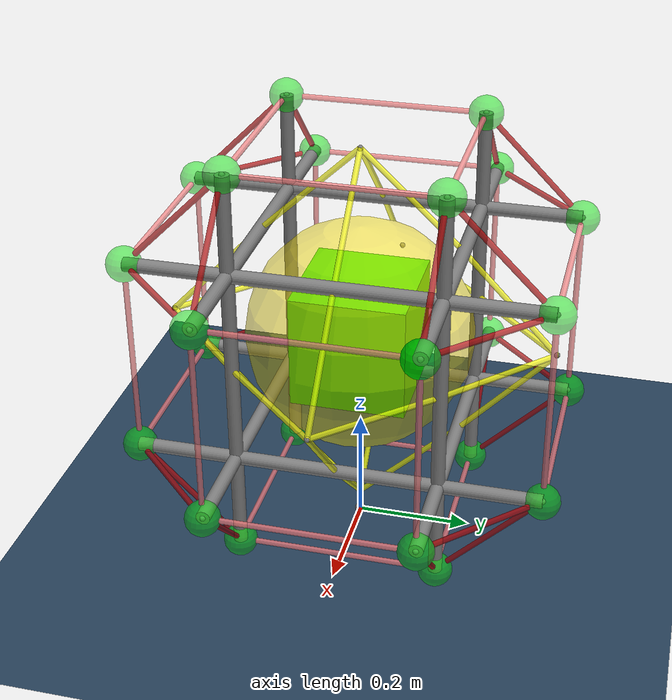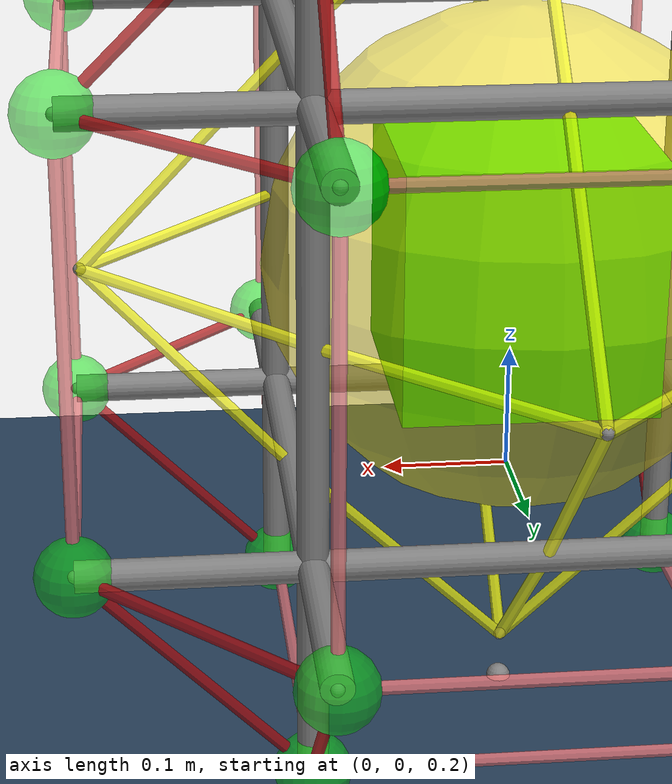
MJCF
<?xml version='1.0' encoding='utf-8'?>
<mujoco model="TT12_environment">
  <compiler autolimits="true" coordinate="local" angle="degree" inertiafromgeom="true" />
  <option timestep="1e-05" gravity="0 0 -10" integrator="Euler">
    <flag override="disable" energy="enable" />
  </option>
  <visual>
    <headlight ambient="0.59999999999999998 0.59999999999999998 0.59999999999999998" diffuse="0.29999999999999999 0.29999999999999999 0.29999999999999999" specular="0.10000000000000001 0.10000000000000001 0.10000000000000001" />
  </visual>
  <default>
    <default class="/">
      <joint type="hinge" damping="0" />
      <geom type="capsule" />
      <site type="sphere" size="0.01" />
      <tendon limited="true" range="0 10" width="0.0050000000000000001" rgba="1 0 0 1" damping="10" />
    </default>
    <default class="tt_model_0/">
      <tendon limited="true" range="0 10" width="0.0050000000000000001" rgba="1 0 0 1" damping="10" />
    </default>
    <default class="tt_model_0/rod0_1/" />
    <default class="tt_model_0/rod2_3/" />
    <default class="tt_model_0/rod4_5/" />
    <default class="tt_model_0/rod6_7/" />
    <default class="tt_model_0/rod8_9/" />
    <default class="tt_model_0/rod10_11/" />
    <default class="tt_model_0/rod12_13/" />
    <default class="tt_model_0/rod14_15/" />
    <default class="tt_model_0/rod16_17/" />
    <default class="tt_model_0/rod18_19/" />
    <default class="tt_model_0/rod20_21/" />
    <default class="tt_model_0/rod22_23/" />
    <default class="tt_model_0/middle_platform/" />
  </default>
  <asset>
    <texture name="skybox" type="skybox" builtin="gradient" rgb1="0.29999999999999999 0.5 0.69999999999999996" rgb2="0 0 0" width="512" height="3072" />
    <texture name="2d" type="2d" builtin="checker" rgb1="0.20000000000000001 0.29999999999999999 0.40000000000000002" rgb2="0.10000000000000001 0.20000000000000001 0.29999999999999999" width="300" height="300" />
    <material name="grid" class="/" texture="2d" texrepeat="5 5" reflectance="0.20000000000000001" />
  </asset>
  <worldbody>
    <geom name="floor" class="/" type="plane" condim="6" priority="1" size="0 0 0.125" material="grid" friction="0.5 0.0050000000000000001 0.0001" solref="-5773.1000000000004 -68.760000000000005" solimp="0.26900000000000002 0.070999999999999994 0.065000000000000002 0.5 2" pos="0 0 0" />
    <light name="light_-2" class="/" pos="-2 -1 3" dir="2 1 -2" />
    <light name="light_2" class="/" pos="2 -1 3" dir="-2 1 -2" />
    <site name="world_site" class="/" pos="0 0 0" />
    <site name="tt_model_0/middle_site_0_1" class="tt_model_0/" rgba="0 0 0 0" pos="0.17499999999999999 0.17499999999999999 0.38" />
    <body pos="0.17499999999999999 0.17499999999999999 0.38" name="tt_model_0/rod0_1/">
      <freejoint name="tt_model_0/rod0_1/" />
      <geom name="tt_model_0/rod0_1/geom0_1" class="tt_model_0/rod0_1/" type="cylinder" size="0.012" mass="0.022499999999999999" fromto="0 0 0.34999999999999998 0 0 -0.34999999999999998" />
      <site name="tt_model_0/rod0_1/node_0" class="tt_model_0/rod0_1/" pos="0 0 0.34999999999999998" />
      <site name="tt_model_0/rod0_1/node_1" class="tt_model_0/rod0_1/" pos="0 0 -0.34999999999999998" />
      <site name="tt_model_0/rod0_1/node_24" class="tt_model_0/rod0_1/" pos="0 0 0" />
      <geom name="tt_model_0/rod0_1/geom_edge_0" class="tt_model_0/rod0_1/" type="sphere" condim="6" size="0.029999999999999999" rgba="0 0.90000000000000002 0 0.5" mass="0.011299999999999999" pos="0 0 0.34999999999999998" />
      <geom name="tt_model_0/rod0_1/geom_edge_1" class="tt_model_0/rod0_1/" type="sphere" condim="6" size="0.029999999999999999" rgba="0 0.90000000000000002 0 0.5" mass="0.011299999999999999" pos="0 0 -0.34999999999999998" />
    </body>
    <site name="tt_model_0/middle_site_2_3" class="tt_model_0/" rgba="0 0 0 0" pos="-0.17499999999999999 0.17499999999999999 0.38" />
    <body pos="-0.17499999999999999 0.17499999999999999 0.38" name="tt_model_0/rod2_3/">
      <freejoint name="tt_model_0/rod2_3/" />
      <geom name="tt_model_0/rod2_3/geom2_3" class="tt_model_0/rod2_3/" type="cylinder" size="0.012" mass="0.022499999999999999" fromto="0 0 0.34999999999999998 0 0 -0.34999999999999998" />
      <site name="tt_model_0/rod2_3/node_2" class="tt_model_0/rod2_3/" pos="0 0 0.34999999999999998" />
      <site name="tt_model_0/rod2_3/node_3" class="tt_model_0/rod2_3/" pos="0 0 -0.34999999999999998" />
      <site name="tt_model_0/rod2_3/node_25" class="tt_model_0/rod2_3/" pos="0 0 0" />
      <geom name="tt_model_0/rod2_3/geom_edge_2" class="tt_model_0/rod2_3/" type="sphere" condim="6" size="0.029999999999999999" rgba="0 0.90000000000000002 0 0.5" mass="0.011299999999999999" pos="0 0 0.34999999999999998" />
      <geom name="tt_model_0/rod2_3/geom_edge_3" class="tt_model_0/rod2_3/" type="sphere" condim="6" size="0.029999999999999999" rgba="0 0.90000000000000002 0 0.5" mass="0.011299999999999999" pos="0 0 -0.34999999999999998" />
    </body>
    <site name="tt_model_0/middle_site_4_5" class="tt_model_0/" rgba="0 0 0 0" pos="-0.17499999999999999 -0.17499999999999999 0.38" />
    <body pos="-0.17499999999999999 -0.17499999999999999 0.38" name="tt_model_0/rod4_5/">
      <freejoint name="tt_model_0/rod4_5/" />
      <geom name="tt_model_0/rod4_5/geom4_5" class="tt_model_0/rod4_5/" type="cylinder" size="0.012" mass="0.022499999999999999" fromto="0 0 0.34999999999999998 0 0 -0.34999999999999998" />
      <site name="tt_model_0/rod4_5/node_4" class="tt_model_0/rod4_5/" pos="0 0 0.34999999999999998" />
      <site name="tt_model_0/rod4_5/node_5" class="tt_model_0/rod4_5/" pos="0 0 -0.34999999999999998" />
      <site name="tt_model_0/rod4_5/node_26" class="tt_model_0/rod4_5/" pos="0 0 0" />
      <geom name="tt_model_0/rod4_5/geom_edge_4" class="tt_model_0/rod4_5/" type="sphere" condim="6" size="0.029999999999999999" rgba="0 0.90000000000000002 0 0.5" mass="0.011299999999999999" pos="0 0 0.34999999999999998" />
      <geom name="tt_model_0/rod4_5/geom_edge_5" class="tt_model_0/rod4_5/" type="sphere" condim="6" size="0.029999999999999999" rgba="0 0.90000000000000002 0 0.5" mass="0.011299999999999999" pos="0 0 -0.34999999999999998" />
    </body>
    <site name="tt_model_0/middle_site_6_7" class="tt_model_0/" rgba="0 0 0 0" pos="0.17499999999999999 -0.17499999999999999 0.38" />
    <body pos="0.17499999999999999 -0.17499999999999999 0.38" name="tt_model_0/rod6_7/">
      <freejoint name="tt_model_0/rod6_7/" />
      <geom name="tt_model_0/rod6_7/geom6_7" class="tt_model_0/rod6_7/" type="cylinder" size="0.012" mass="0.022499999999999999" fromto="0 0 0.34999999999999998 0 0 -0.34999999999999998" />
      <site name="tt_model_0/rod6_7/node_6" class="tt_model_0/rod6_7/" pos="0 0 0.34999999999999998" />
      <site name="tt_model_0/rod6_7/node_7" class="tt_model_0/rod6_7/" pos="0 0 -0.34999999999999998" />
      <site name="tt_model_0/rod6_7/node_27" class="tt_model_0/rod6_7/" pos="0 0 0" />
      <geom name="tt_model_0/rod6_7/geom_edge_6" class="tt_model_0/rod6_7/" type="sphere" condim="6" size="0.029999999999999999" rgba="0 0.90000000000000002 0 0.5" mass="0.011299999999999999" pos="0 0 0.34999999999999998" />
      <geom name="tt_model_0/rod6_7/geom_edge_7" class="tt_model_0/rod6_7/" type="sphere" condim="6" size="0.029999999999999999" rgba="0 0.90000000000000002 0 0.5" mass="0.011299999999999999" pos="0 0 -0.34999999999999998" />
    </body>
    <site name="tt_model_0/middle_site_8_9" class="tt_model_0/" rgba="0 0 0 0" pos="0.17499999999999999 0 0.55499999999999994" />
    <body pos="0.17499999999999999 0 0.55499999999999994" name="tt_model_0/rod8_9/">
      <freejoint name="tt_model_0/rod8_9/" />
      <geom name="tt_model_0/rod8_9/geom8_9" class="tt_model_0/rod8_9/" type="cylinder" size="0.012" mass="0.022499999999999999" fromto="0 0.34999999999999998 0 0 -0.34999999999999998 0" />
      <site name="tt_model_0/rod8_9/node_8" class="tt_model_0/rod8_9/" pos="0 0.34999999999999998 0" />
      <site name="tt_model_0/rod8_9/node_9" class="tt_model_0/rod8_9/" pos="0 -0.34999999999999998 0" />
      <site name="tt_model_0/rod8_9/node_28" class="tt_model_0/rod8_9/" pos="0 0 0" />
      <geom name="tt_model_0/rod8_9/geom_edge_8" class="tt_model_0/rod8_9/" type="sphere" condim="6" size="0.029999999999999999" rgba="0 0.90000000000000002 0 0.5" mass="0.011299999999999999" pos="0 0.34999999999999998 0" />
      <geom name="tt_model_0/rod8_9/geom_edge_9" class="tt_model_0/rod8_9/" type="sphere" condim="6" size="0.029999999999999999" rgba="0 0.90000000000000002 0 0.5" mass="0.011299999999999999" pos="0 -0.34999999999999998 0" />
    </body>
    <site name="tt_model_0/middle_site_10_11" class="tt_model_0/" rgba="0 0 0 0" pos="0.17499999999999999 0 0.20500000000000002" />
    <body pos="0.17499999999999999 0 0.20500000000000002" name="tt_model_0/rod10_11/">
      <freejoint name="tt_model_0/rod10_11/" />
      <geom name="tt_model_0/rod10_11/geom10_11" class="tt_model_0/rod10_11/" type="cylinder" size="0.012" mass="0.022499999999999999" fromto="0 0.34999999999999998 0 0 -0.34999999999999998 0" />
      <site name="tt_model_0/rod10_11/node_10" class="tt_model_0/rod10_11/" pos="0 0.34999999999999998 0" />
      <site name="tt_model_0/rod10_11/node_11" class="tt_model_0/rod10_11/" pos="0 -0.34999999999999998 0" />
      <site name="tt_model_0/rod10_11/node_29" class="tt_model_0/rod10_11/" pos="0 0 0" />
      <geom name="tt_model_0/rod10_11/geom_edge_10" class="tt_model_0/rod10_11/" type="sphere" condim="6" size="0.029999999999999999" rgba="0 0.90000000000000002 0 0.5" mass="0.011299999999999999" pos="0 0.34999999999999998 0" />
      <geom name="tt_model_0/rod10_11/geom_edge_11" class="tt_model_0/rod10_11/" type="sphere" condim="6" size="0.029999999999999999" rgba="0 0.90000000000000002 0 0.5" mass="0.011299999999999999" pos="0 -0.34999999999999998 0" />
    </body>
    <site name="tt_model_0/middle_site_12_13" class="tt_model_0/" rgba="0 0 0 0" pos="-0.17499999999999999 0 0.20500000000000002" />
    <body pos="-0.17499999999999999 0 0.20500000000000002" name="tt_model_0/rod12_13/">
      <freejoint name="tt_model_0/rod12_13/" />
      <geom name="tt_model_0/rod12_13/geom12_13" class="tt_model_0/rod12_13/" type="cylinder" size="0.012" mass="0.022499999999999999" fromto="0 0.34999999999999998 0 0 -0.34999999999999998 0" />
      <site name="tt_model_0/rod12_13/node_12" class="tt_model_0/rod12_13/" pos="0 0.34999999999999998 0" />
      <site name="tt_model_0/rod12_13/node_13" class="tt_model_0/rod12_13/" pos="0 -0.34999999999999998 0" />
      <site name="tt_model_0/rod12_13/node_30" class="tt_model_0/rod12_13/" pos="0 0 0" />
      <geom name="tt_model_0/rod12_13/geom_edge_12" class="tt_model_0/rod12_13/" type="sphere" condim="6" size="0.029999999999999999" rgba="0 0.90000000000000002 0 0.5" mass="0.011299999999999999" pos="0 0.34999999999999998 0" />
      <geom name="tt_model_0/rod12_13/geom_edge_13" class="tt_model_0/rod12_13/" type="sphere" condim="6" size="0.029999999999999999" rgba="0 0.90000000000000002 0 0.5" mass="0.011299999999999999" pos="0 -0.34999999999999998 0" />
    </body>
    <site name="tt_model_0/middle_site_14_15" class="tt_model_0/" rgba="0 0 0 0" pos="-0.17499999999999999 0 0.55499999999999994" />
    <body pos="-0.17499999999999999 0 0.55499999999999994" name="tt_model_0/rod14_15/">
      <freejoint name="tt_model_0/rod14_15/" />
      <geom name="tt_model_0/rod14_15/geom14_15" class="tt_model_0/rod14_15/" type="cylinder" size="0.012" mass="0.022499999999999999" fromto="0 0.34999999999999998 0 0 -0.34999999999999998 0" />
      <site name="tt_model_0/rod14_15/node_14" class="tt_model_0/rod14_15/" pos="0 0.34999999999999998 0" />
      <site name="tt_model_0/rod14_15/node_15" class="tt_model_0/rod14_15/" pos="0 -0.34999999999999998 0" />
      <site name="tt_model_0/rod14_15/node_31" class="tt_model_0/rod14_15/" pos="0 0 0" />
      <geom name="tt_model_0/rod14_15/geom_edge_14" class="tt_model_0/rod14_15/" type="sphere" condim="6" size="0.029999999999999999" rgba="0 0.90000000000000002 0 0.5" mass="0.011299999999999999" pos="0 0.34999999999999998 0" />
      <geom name="tt_model_0/rod14_15/geom_edge_15" class="tt_model_0/rod14_15/" type="sphere" condim="6" size="0.029999999999999999" rgba="0 0.90000000000000002 0 0.5" mass="0.011299999999999999" pos="0 -0.34999999999999998 0" />
    </body>
    <site name="tt_model_0/middle_site_16_17" class="tt_model_0/" rgba="0 0 0 0" pos="0 0.17499999999999999 0.55499999999999994" />
    <body pos="0 0.17499999999999999 0.55499999999999994" name="tt_model_0/rod16_17/">
      <freejoint name="tt_model_0/rod16_17/" />
      <geom name="tt_model_0/rod16_17/geom16_17" class="tt_model_0/rod16_17/" type="cylinder" size="0.012" mass="0.022499999999999999" fromto="0.34999999999999998 0 0 -0.34999999999999998 0 0" />
      <site name="tt_model_0/rod16_17/node_16" class="tt_model_0/rod16_17/" pos="0.34999999999999998 0 0" />
      <site name="tt_model_0/rod16_17/node_17" class="tt_model_0/rod16_17/" pos="-0.34999999999999998 0 0" />
      <site name="tt_model_0/rod16_17/node_32" class="tt_model_0/rod16_17/" pos="0 0 0" />
      <geom name="tt_model_0/rod16_17/geom_edge_16" class="tt_model_0/rod16_17/" type="sphere" condim="6" size="0.029999999999999999" rgba="0 0.90000000000000002 0 0.5" mass="0.011299999999999999" pos="0.34999999999999998 0 0" />
      <geom name="tt_model_0/rod16_17/geom_edge_17" class="tt_model_0/rod16_17/" type="sphere" condim="6" size="0.029999999999999999" rgba="0 0.90000000000000002 0 0.5" mass="0.011299999999999999" pos="-0.34999999999999998 0 0" />
    </body>
    <site name="tt_model_0/middle_site_18_19" class="tt_model_0/" rgba="0 0 0 0" pos="0 -0.17499999999999999 0.55499999999999994" />
    <body pos="0 -0.17499999999999999 0.55499999999999994" name="tt_model_0/rod18_19/">
      <freejoint name="tt_model_0/rod18_19/" />
      <geom name="tt_model_0/rod18_19/geom18_19" class="tt_model_0/rod18_19/" type="cylinder" size="0.012" mass="0.022499999999999999" fromto="0.34999999999999998 0 0 -0.34999999999999998 0 0" />
      <site name="tt_model_0/rod18_19/node_18" class="tt_model_0/rod18_19/" pos="0.34999999999999998 0 0" />
      <site name="tt_model_0/rod18_19/node_19" class="tt_model_0/rod18_19/" pos="-0.34999999999999998 0 0" />
      <site name="tt_model_0/rod18_19/node_33" class="tt_model_0/rod18_19/" pos="0 0 0" />
      <geom name="tt_model_0/rod18_19/geom_edge_18" class="tt_model_0/rod18_19/" type="sphere" condim="6" size="0.029999999999999999" rgba="0 0.90000000000000002 0 0.5" mass="0.011299999999999999" pos="0.34999999999999998 0 0" />
      <geom name="tt_model_0/rod18_19/geom_edge_19" class="tt_model_0/rod18_19/" type="sphere" condim="6" size="0.029999999999999999" rgba="0 0.90000000000000002 0 0.5" mass="0.011299999999999999" pos="-0.34999999999999998 0 0" />
    </body>
    <site name="tt_model_0/middle_site_20_21" class="tt_model_0/" rgba="0 0 0 0" pos="0 -0.17499999999999999 0.20500000000000002" />
    <body pos="0 -0.17499999999999999 0.20500000000000002" name="tt_model_0/rod20_21/">
      <freejoint name="tt_model_0/rod20_21/" />
      <geom name="tt_model_0/rod20_21/geom20_21" class="tt_model_0/rod20_21/" type="cylinder" size="0.012" mass="0.022499999999999999" fromto="0.34999999999999998 0 0 -0.34999999999999998 0 0" />
      <site name="tt_model_0/rod20_21/node_20" class="tt_model_0/rod20_21/" pos="0.34999999999999998 0 0" />
      <site name="tt_model_0/rod20_21/node_21" class="tt_model_0/rod20_21/" pos="-0.34999999999999998 0 0" />
      <site name="tt_model_0/rod20_21/node_34" class="tt_model_0/rod20_21/" pos="0 0 0" />
      <geom name="tt_model_0/rod20_21/geom_edge_20" class="tt_model_0/rod20_21/" type="sphere" condim="6" size="0.029999999999999999" rgba="0 0.90000000000000002 0 0.5" mass="0.011299999999999999" pos="0.34999999999999998 0 0" />
      <geom name="tt_model_0/rod20_21/geom_edge_21" class="tt_model_0/rod20_21/" type="sphere" condim="6" size="0.029999999999999999" rgba="0 0.90000000000000002 0 0.5" mass="0.011299999999999999" pos="-0.34999999999999998 0 0" />
    </body>
    <site name="tt_model_0/middle_site_22_23" class="tt_model_0/" rgba="0 0 0 0" pos="0 0.17499999999999999 0.20500000000000002" />
    <body pos="0 0.17499999999999999 0.20500000000000002" name="tt_model_0/rod22_23/">
      <freejoint name="tt_model_0/rod22_23/" />
      <geom name="tt_model_0/rod22_23/geom22_23" class="tt_model_0/rod22_23/" type="cylinder" size="0.012" mass="0.022499999999999999" fromto="0.34999999999999998 0 0 -0.34999999999999998 0 0" />
      <site name="tt_model_0/rod22_23/node_22" class="tt_model_0/rod22_23/" pos="0.34999999999999998 0 0" />
      <site name="tt_model_0/rod22_23/node_23" class="tt_model_0/rod22_23/" pos="-0.34999999999999998 0 0" />
      <site name="tt_model_0/rod22_23/node_35" class="tt_model_0/rod22_23/" pos="0 0 0" />
      <geom name="tt_model_0/rod22_23/geom_edge_22" class="tt_model_0/rod22_23/" type="sphere" condim="6" size="0.029999999999999999" rgba="0 0.90000000000000002 0 0.5" mass="0.011299999999999999" pos="0.34999999999999998 0 0" />
      <geom name="tt_model_0/rod22_23/geom_edge_23" class="tt_model_0/rod22_23/" type="sphere" condim="6" size="0.029999999999999999" rgba="0 0.90000000000000002 0 0.5" mass="0.011299999999999999" pos="-0.34999999999999998 0 0" />
    </body>
    <site name="tt_model_0/middle_element_site" class="tt_model_0/" rgba="0 0 0 0" pos="0 0 0.38" />
    <body pos="0 0 0.38" name="tt_model_0/middle_platform/">
      <freejoint name="tt_model_0/middle_platform/" />
      <inertial pos="0 0 0" mass="0.69999999999999996" diaginertia="0.02 0.02 0.02" />
      <site name="tt_model_0/middle_platform/node_41" class="tt_model_0/middle_platform/" pos="0 0 0.33999999999999997" />
      <site name="tt_model_0/middle_platform/node_38" class="tt_model_0/middle_platform/" pos="-0.34000000000000002 0 0" />
      <site name="tt_model_0/middle_platform/node_40" class="tt_model_0/middle_platform/" pos="0 -0.34000000000000002 0" />
      <site name="tt_model_0/middle_platform/node_39" class="tt_model_0/middle_platform/" pos="0 0.34000000000000002 0" />
      <site name="tt_model_0/middle_platform/node_37" class="tt_model_0/middle_platform/" pos="0.34000000000000002 0 0" />
      <site name="tt_model_0/middle_platform/node_42" class="tt_model_0/middle_platform/" pos="0 0 -0.34000000000000002" />
      <site name="tt_model_0/middle_platform/outside_site" class="tt_model_0/middle_platform/" rgba="1 0.90000000000000002 0 0.5" size="0.20000000000000001" pos="0 0 0" />
      <body name="tt_model_0/middle_platform/inside_ball" pos="0 0 0">
        <inertial pos="0 0 0" mass="6.5999999999999996" diaginertia="0.12 0.12 0.12" />
        <joint name="tt_model_0/middle_platform/x_control" class="tt_model_0/middle_platform/" type="hinge" axis="1 0 0" />
        <joint name="tt_model_0/middle_platform/y_control" class="tt_model_0/middle_platform/" type="hinge" axis="0 1 0" />
        <joint name="tt_model_0/middle_platform/z_control" class="tt_model_0/middle_platform/" type="hinge" axis="0 0 1" />
        <site name="tt_model_0/middle_platform/inside_site" class="tt_model_0/middle_platform/" type="box" rgba="0 0.90000000000000002 0 1" size="0.10000000000000001 0.10000000000000001 0.10000000000000001" pos="0 0 0" />
      </body>
    </body>
  </worldbody>
  <contact>
    <exclude name="tt_model_0/exclude_rod0_1_rod2_3" body1="tt_model_0/rod0_1/" body2="tt_model_0/rod2_3/" />
    <exclude name="tt_model_0/exclude_rod0_1_rod4_5" body1="tt_model_0/rod0_1/" body2="tt_model_0/rod4_5/" />
    <exclude name="tt_model_0/exclude_rod0_1_rod6_7" body1="tt_model_0/rod0_1/" body2="tt_model_0/rod6_7/" />
    <exclude name="tt_model_0/exclude_rod0_1_rod8_9" body1="tt_model_0/rod0_1/" body2="tt_model_0/rod8_9/" />
    <exclude name="tt_model_0/exclude_rod0_1_rod10_11" body1="tt_model_0/rod0_1/" body2="tt_model_0/rod10_11/" />
    <exclude name="tt_model_0/exclude_rod0_1_rod12_13" body1="tt_model_0/rod0_1/" body2="tt_model_0/rod12_13/" />
    <exclude name="tt_model_0/exclude_rod0_1_rod14_15" body1="tt_model_0/rod0_1/" body2="tt_model_0/rod14_15/" />
    <exclude name="tt_model_0/exclude_rod0_1_rod16_17" body1="tt_model_0/rod0_1/" body2="tt_model_0/rod16_17/" />
    <exclude name="tt_model_0/exclude_rod0_1_rod18_19" body1="tt_model_0/rod0_1/" body2="tt_model_0/rod18_19/" />
    <exclude name="tt_model_0/exclude_rod0_1_rod20_21" body1="tt_model_0/rod0_1/" body2="tt_model_0/rod20_21/" />
    <exclude name="tt_model_0/exclude_rod0_1_rod22_23" body1="tt_model_0/rod0_1/" body2="tt_model_0/rod22_23/" />
    <exclude name="tt_model_0/exclude_rod2_3_rod4_5" body1="tt_model_0/rod2_3/" body2="tt_model_0/rod4_5/" />
    <exclude name="tt_model_0/exclude_rod2_3_rod6_7" body1="tt_model_0/rod2_3/" body2="tt_model_0/rod6_7/" />
    <exclude name="tt_model_0/exclude_rod2_3_rod8_9" body1="tt_model_0/rod2_3/" body2="tt_model_0/rod8_9/" />
    <exclude name="tt_model_0/exclude_rod2_3_rod10_11" body1="tt_model_0/rod2_3/" body2="tt_model_0/rod10_11/" />
    <exclude name="tt_model_0/exclude_rod2_3_rod12_13" body1="tt_model_0/rod2_3/" body2="tt_model_0/rod12_13/" />
    <exclude name="tt_model_0/exclude_rod2_3_rod14_15" body1="tt_model_0/rod2_3/" body2="tt_model_0/rod14_15/" />
    <exclude name="tt_model_0/exclude_rod2_3_rod16_17" body1="tt_model_0/rod2_3/" body2="tt_model_0/rod16_17/" />
    <exclude name="tt_model_0/exclude_rod2_3_rod18_19" body1="tt_model_0/rod2_3/" body2="tt_model_0/rod18_19/" />
    <exclude name="tt_model_0/exclude_rod2_3_rod20_21" body1="tt_model_0/rod2_3/" body2="tt_model_0/rod20_21/" />
    <exclude name="tt_model_0/exclude_rod2_3_rod22_23" body1="tt_model_0/rod2_3/" body2="tt_model_0/rod22_23/" />
    <exclude name="tt_model_0/exclude_rod4_5_rod6_7" body1="tt_model_0/rod4_5/" body2="tt_model_0/rod6_7/" />
    <exclude name="tt_model_0/exclude_rod4_5_rod8_9" body1="tt_model_0/rod4_5/" body2="tt_model_0/rod8_9/" />
    <exclude name="tt_model_0/exclude_rod4_5_rod10_11" body1="tt_model_0/rod4_5/" body2="tt_model_0/rod10_11/" />
    <exclude name="tt_model_0/exclude_rod4_5_rod12_13" body1="tt_model_0/rod4_5/" body2="tt_model_0/rod12_13/" />
    <exclude name="tt_model_0/exclude_rod4_5_rod14_15" body1="tt_model_0/rod4_5/" body2="tt_model_0/rod14_15/" />
    <exclude name="tt_model_0/exclude_rod4_5_rod16_17" body1="tt_model_0/rod4_5/" body2="tt_model_0/rod16_17/" />
    <exclude name="tt_model_0/exclude_rod4_5_rod18_19" body1="tt_model_0/rod4_5/" body2="tt_model_0/rod18_19/" />
    <exclude name="tt_model_0/exclude_rod4_5_rod20_21" body1="tt_model_0/rod4_5/" body2="tt_model_0/rod20_21/" />
    <exclude name="tt_model_0/exclude_rod4_5_rod22_23" body1="tt_model_0/rod4_5/" body2="tt_model_0/rod22_23/" />
    <exclude name="tt_model_0/exclude_rod6_7_rod8_9" body1="tt_model_0/rod6_7/" body2="tt_model_0/rod8_9/" />
    <exclude name="tt_model_0/exclude_rod6_7_rod10_11" body1="tt_model_0/rod6_7/" body2="tt_model_0/rod10_11/" />
    <exclude name="tt_model_0/exclude_rod6_7_rod12_13" body1="tt_model_0/rod6_7/" body2="tt_model_0/rod12_13/" />
    <exclude name="tt_model_0/exclude_rod6_7_rod14_15" body1="tt_model_0/rod6_7/" body2="tt_model_0/rod14_15/" />
    <exclude name="tt_model_0/exclude_rod6_7_rod16_17" body1="tt_model_0/rod6_7/" body2="tt_model_0/rod16_17/" />
    <exclude name="tt_model_0/exclude_rod6_7_rod18_19" body1="tt_model_0/rod6_7/" body2="tt_model_0/rod18_19/" />
    <exclude name="tt_model_0/exclude_rod6_7_rod20_21" body1="tt_model_0/rod6_7/" body2="tt_model_0/rod20_21/" />
    <exclude name="tt_model_0/exclude_rod6_7_rod22_23" body1="tt_model_0/rod6_7/" body2="tt_model_0/rod22_23/" />
    <exclude name="tt_model_0/exclude_rod8_9_rod10_11" body1="tt_model_0/rod8_9/" body2="tt_model_0/rod10_11/" />
    <exclude name="tt_model_0/exclude_rod8_9_rod12_13" body1="tt_model_0/rod8_9/" body2="tt_model_0/rod12_13/" />
    <exclude name="tt_model_0/exclude_rod8_9_rod14_15" body1="tt_model_0/rod8_9/" body2="tt_model_0/rod14_15/" />
    <exclude name="tt_model_0/exclude_rod8_9_rod16_17" body1="tt_model_0/rod8_9/" body2="tt_model_0/rod16_17/" />
    <exclude name="tt_model_0/exclude_rod8_9_rod18_19" body1="tt_model_0/rod8_9/" body2="tt_model_0/rod18_19/" />
    <exclude name="tt_model_0/exclude_rod8_9_rod20_21" body1="tt_model_0/rod8_9/" body2="tt_model_0/rod20_21/" />
    <exclude name="tt_model_0/exclude_rod8_9_rod22_23" body1="tt_model_0/rod8_9/" body2="tt_model_0/rod22_23/" />
    <exclude name="tt_model_0/exclude_rod10_11_rod12_13" body1="tt_model_0/rod10_11/" body2="tt_model_0/rod12_13/" />
    <exclude name="tt_model_0/exclude_rod10_11_rod14_15" body1="tt_model_0/rod10_11/" body2="tt_model_0/rod14_15/" />
    <exclude name="tt_model_0/exclude_rod10_11_rod16_17" body1="tt_model_0/rod10_11/" body2="tt_model_0/rod16_17/" />
    <exclude name="tt_model_0/exclude_rod10_11_rod18_19" body1="tt_model_0/rod10_11/" body2="tt_model_0/rod18_19/" />
    <exclude name="tt_model_0/exclude_rod10_11_rod20_21" body1="tt_model_0/rod10_11/" body2="tt_model_0/rod20_21/" />
    <exclude name="tt_model_0/exclude_rod10_11_rod22_23" body1="tt_model_0/rod10_11/" body2="tt_model_0/rod22_23/" />
    <exclude name="tt_model_0/exclude_rod12_13_rod14_15" body1="tt_model_0/rod12_13/" body2="tt_model_0/rod14_15/" />
    <exclude name="tt_model_0/exclude_rod12_13_rod16_17" body1="tt_model_0/rod12_13/" body2="tt_model_0/rod16_17/" />
    <exclude name="tt_model_0/exclude_rod12_13_rod18_19" body1="tt_model_0/rod12_13/" body2="tt_model_0/rod18_19/" />
    <exclude name="tt_model_0/exclude_rod12_13_rod20_21" body1="tt_model_0/rod12_13/" body2="tt_model_0/rod20_21/" />
    <exclude name="tt_model_0/exclude_rod12_13_rod22_23" body1="tt_model_0/rod12_13/" body2="tt_model_0/rod22_23/" />
    <exclude name="tt_model_0/exclude_rod14_15_rod16_17" body1="tt_model_0/rod14_15/" body2="tt_model_0/rod16_17/" />
    <exclude name="tt_model_0/exclude_rod14_15_rod18_19" body1="tt_model_0/rod14_15/" body2="tt_model_0/rod18_19/" />
    <exclude name="tt_model_0/exclude_rod14_15_rod20_21" body1="tt_model_0/rod14_15/" body2="tt_model_0/rod20_21/" />
    <exclude name="tt_model_0/exclude_rod14_15_rod22_23" body1="tt_model_0/rod14_15/" body2="tt_model_0/rod22_23/" />
    <exclude name="tt_model_0/exclude_rod16_17_rod18_19" body1="tt_model_0/rod16_17/" body2="tt_model_0/rod18_19/" />
    <exclude name="tt_model_0/exclude_rod16_17_rod20_21" body1="tt_model_0/rod16_17/" body2="tt_model_0/rod20_21/" />
    <exclude name="tt_model_0/exclude_rod16_17_rod22_23" body1="tt_model_0/rod16_17/" body2="tt_model_0/rod22_23/" />
    <exclude name="tt_model_0/exclude_rod18_19_rod20_21" body1="tt_model_0/rod18_19/" body2="tt_model_0/rod20_21/" />
    <exclude name="tt_model_0/exclude_rod18_19_rod22_23" body1="tt_model_0/rod18_19/" body2="tt_model_0/rod22_23/" />
    <exclude name="tt_model_0/exclude_rod20_21_rod22_23" body1="tt_model_0/rod20_21/" body2="tt_model_0/rod22_23/" />
  </contact>
  <tendon>
    <spatial name="tt_model_0/td0_2" class="tt_model_0/" rgba="1 0.5 0.5 0.69999999999999996" springlength="0.22029831387808038" stiffness="771">
      <site site="tt_model_0/rod0_1/node_0" />
      <site site="tt_model_0/rod2_3/node_2" />
    </spatial>
    <spatial name="tt_model_0/td2_4" class="tt_model_0/" rgba="1 0.5 0.5 0.69999999999999996" springlength="0.22029831387808038" stiffness="771">
      <site site="tt_model_0/rod2_3/node_2" />
      <site site="tt_model_0/rod4_5/node_4" />
    </spatial>
    <spatial name="tt_model_0/td4_6" class="tt_model_0/" rgba="1 0.5 0.5 0.69999999999999996" springlength="0.22029831387808038" stiffness="771">
      <site site="tt_model_0/rod4_5/node_4" />
      <site site="tt_model_0/rod6_7/node_6" />
    </spatial>
    <spatial name="tt_model_0/td6_0" class="tt_model_0/" rgba="1 0.5 0.5 0.69999999999999996" springlength="0.22029831387808038" stiffness="771">
      <site site="tt_model_0/rod6_7/node_6" />
      <site site="tt_model_0/rod0_1/node_0" />
    </spatial>
    <spatial name="tt_model_0/td1_3" class="tt_model_0/" rgba="1 0.5 0.5 0.69999999999999996" springlength="0.22029831387808038" stiffness="771">
      <site site="tt_model_0/rod0_1/node_1" />
      <site site="tt_model_0/rod2_3/node_3" />
    </spatial>
    <spatial name="tt_model_0/td3_5" class="tt_model_0/" rgba="1 0.5 0.5 0.69999999999999996" springlength="0.22029831387808038" stiffness="771">
      <site site="tt_model_0/rod2_3/node_3" />
      <site site="tt_model_0/rod4_5/node_5" />
    </spatial>
    <spatial name="tt_model_0/td5_7" class="tt_model_0/" rgba="1 0.5 0.5 0.69999999999999996" springlength="0.22029831387808038" stiffness="771">
      <site site="tt_model_0/rod4_5/node_5" />
      <site site="tt_model_0/rod6_7/node_7" />
    </spatial>
    <spatial name="tt_model_0/td7_1" class="tt_model_0/" rgba="1 0.5 0.5 0.69999999999999996" springlength="0.22029831387808038" stiffness="771">
      <site site="tt_model_0/rod6_7/node_7" />
      <site site="tt_model_0/rod0_1/node_1" />
    </spatial>
    <spatial name="tt_model_0/td8_10" class="tt_model_0/" rgba="1 0.5 0.5 0.69999999999999996" springlength="0.22029831387808038" stiffness="771">
      <site site="tt_model_0/rod8_9/node_8" />
      <site site="tt_model_0/rod10_11/node_10" />
    </spatial>
    <spatial name="tt_model_0/td10_12" class="tt_model_0/" rgba="1 0.5 0.5 0.69999999999999996" springlength="0.22029831387808038" stiffness="771">
      <site site="tt_model_0/rod10_11/node_10" />
      <site site="tt_model_0/rod12_13/node_12" />
    </spatial>
    <spatial name="tt_model_0/td12_14" class="tt_model_0/" rgba="1 0.5 0.5 0.69999999999999996" springlength="0.22029831387808038" stiffness="771">
      <site site="tt_model_0/rod12_13/node_12" />
      <site site="tt_model_0/rod14_15/node_14" />
    </spatial>
    <spatial name="tt_model_0/td14_8" class="tt_model_0/" rgba="1 0.5 0.5 0.69999999999999996" springlength="0.22029831387808038" stiffness="771">
      <site site="tt_model_0/rod14_15/node_14" />
      <site site="tt_model_0/rod8_9/node_8" />
    </spatial>
    <spatial name="tt_model_0/td9_11" class="tt_model_0/" rgba="1 0.5 0.5 0.69999999999999996" springlength="0.22029831387808038" stiffness="771">
      <site site="tt_model_0/rod8_9/node_9" />
      <site site="tt_model_0/rod10_11/node_11" />
    </spatial>
    <spatial name="tt_model_0/td11_13" class="tt_model_0/" rgba="1 0.5 0.5 0.69999999999999996" springlength="0.22029831387808038" stiffness="771">
      <site site="tt_model_0/rod10_11/node_11" />
      <site site="tt_model_0/rod12_13/node_13" />
    </spatial>
    <spatial name="tt_model_0/td13_15" class="tt_model_0/" rgba="1 0.5 0.5 0.69999999999999996" springlength="0.22029831387808038" stiffness="771">
      <site site="tt_model_0/rod12_13/node_13" />
      <site site="tt_model_0/rod14_15/node_15" />
    </spatial>
    <spatial name="tt_model_0/td15_9" class="tt_model_0/" rgba="1 0.5 0.5 0.69999999999999996" springlength="0.22029831387808038" stiffness="771">
      <site site="tt_model_0/rod14_15/node_15" />
      <site site="tt_model_0/rod8_9/node_9" />
    </spatial>
    <spatial name="tt_model_0/td16_18" class="tt_model_0/" rgba="1 0.5 0.5 0.69999999999999996" springlength="0.22029831387808038" stiffness="771">
      <site site="tt_model_0/rod16_17/node_16" />
      <site site="tt_model_0/rod18_19/node_18" />
    </spatial>
    <spatial name="tt_model_0/td18_20" class="tt_model_0/" rgba="1 0.5 0.5 0.69999999999999996" springlength="0.22029831387808038" stiffness="771">
      <site site="tt_model_0/rod18_19/node_18" />
      <site site="tt_model_0/rod20_21/node_20" />
    </spatial>
    <spatial name="tt_model_0/td20_22" class="tt_model_0/" rgba="1 0.5 0.5 0.69999999999999996" springlength="0.22029831387808038" stiffness="771">
      <site site="tt_model_0/rod20_21/node_20" />
      <site site="tt_model_0/rod22_23/node_22" />
    </spatial>
    <spatial name="tt_model_0/td22_16" class="tt_model_0/" rgba="1 0.5 0.5 0.69999999999999996" springlength="0.22029831387808038" stiffness="771">
      <site site="tt_model_0/rod22_23/node_22" />
      <site site="tt_model_0/rod16_17/node_16" />
    </spatial>
    <spatial name="tt_model_0/td17_19" class="tt_model_0/" rgba="1 0.5 0.5 0.69999999999999996" springlength="0.22029831387808038" stiffness="771">
      <site site="tt_model_0/rod16_17/node_17" />
      <site site="tt_model_0/rod18_19/node_19" />
    </spatial>
    <spatial name="tt_model_0/td19_21" class="tt_model_0/" rgba="1 0.5 0.5 0.69999999999999996" springlength="0.22029831387808038" stiffness="771">
      <site site="tt_model_0/rod18_19/node_19" />
      <site site="tt_model_0/rod20_21/node_21" />
    </spatial>
    <spatial name="tt_model_0/td21_23" class="tt_model_0/" rgba="1 0.5 0.5 0.69999999999999996" springlength="0.22029831387808038" stiffness="771">
      <site site="tt_model_0/rod20_21/node_21" />
      <site site="tt_model_0/rod22_23/node_23" />
    </spatial>
    <spatial name="tt_model_0/td23_17" class="tt_model_0/" rgba="1 0.5 0.5 0.69999999999999996" springlength="0.22029831387808038" stiffness="771">
      <site site="tt_model_0/rod22_23/node_23" />
      <site site="tt_model_0/rod16_17/node_17" />
    </spatial>
    <spatial name="tt_model_0/td0_16" class="tt_model_0/" rgba="0.69999999999999996 0 0 0.69999999999999996" springlength="0.10248737341529165" stiffness="2000">
      <site site="tt_model_0/rod0_1/node_0" />
      <site site="tt_model_0/rod16_17/node_16" />
    </spatial>
    <spatial name="tt_model_0/td2_17" class="tt_model_0/" rgba="0.69999999999999996 0 0 0.69999999999999996" springlength="0.10248737341529165" stiffness="2000">
      <site site="tt_model_0/rod2_3/node_2" />
      <site site="tt_model_0/rod16_17/node_17" />
    </spatial>
    <spatial name="tt_model_0/td4_19" class="tt_model_0/" rgba="0.69999999999999996 0 0 0.69999999999999996" springlength="0.10248737341529165" stiffness="2000">
      <site site="tt_model_0/rod4_5/node_4" />
      <site site="tt_model_0/rod18_19/node_19" />
    </spatial>
    <spatial name="tt_model_0/td6_18" class="tt_model_0/" rgba="0.69999999999999996 0 0 0.69999999999999996" springlength="0.10248737341529165" stiffness="2000">
      <site site="tt_model_0/rod6_7/node_6" />
      <site site="tt_model_0/rod18_19/node_18" />
    </spatial>
    <spatial name="tt_model_0/td1_22" class="tt_model_0/" rgba="0.69999999999999996 0 0 0.69999999999999996" springlength="0.10248737341529165" stiffness="2000">
      <site site="tt_model_0/rod0_1/node_1" />
      <site site="tt_model_0/rod22_23/node_22" />
    </spatial>
    <spatial name="tt_model_0/td3_23" class="tt_model_0/" rgba="0.69999999999999996 0 0 0.69999999999999996" springlength="0.10248737341529165" stiffness="2000">
      <site site="tt_model_0/rod2_3/node_3" />
      <site site="tt_model_0/rod22_23/node_23" />
    </spatial>
    <spatial name="tt_model_0/td5_21" class="tt_model_0/" rgba="0.69999999999999996 0 0 0.69999999999999996" springlength="0.10248737341529165" stiffness="2000">
      <site site="tt_model_0/rod4_5/node_5" />
      <site site="tt_model_0/rod20_21/node_21" />
    </spatial>
    <spatial name="tt_model_0/td7_20" class="tt_model_0/" rgba="0.69999999999999996 0 0 0.69999999999999996" springlength="0.10248737341529165" stiffness="2000">
      <site site="tt_model_0/rod6_7/node_7" />
      <site site="tt_model_0/rod20_21/node_20" />
    </spatial>
    <spatial name="tt_model_0/td8_0" class="tt_model_0/" rgba="0.69999999999999996 0 0 0.69999999999999996" springlength="0.10248737341529165" stiffness="2000">
      <site site="tt_model_0/rod8_9/node_8" />
      <site site="tt_model_0/rod0_1/node_0" />
    </spatial>
    <spatial name="tt_model_0/td8_16" class="tt_model_0/" rgba="0.69999999999999996 0 0 0.69999999999999996" springlength="0.10248737341529165" stiffness="2000">
      <site site="tt_model_0/rod8_9/node_8" />
      <site site="tt_model_0/rod16_17/node_16" />
    </spatial>
    <spatial name="tt_model_0/td9_6" class="tt_model_0/" rgba="0.69999999999999996 0 0 0.69999999999999996" springlength="0.10248737341529165" stiffness="2000">
      <site site="tt_model_0/rod8_9/node_9" />
      <site site="tt_model_0/rod6_7/node_6" />
    </spatial>
    <spatial name="tt_model_0/td9_18" class="tt_model_0/" rgba="0.69999999999999996 0 0 0.69999999999999996" springlength="0.10248737341529165" stiffness="2000">
      <site site="tt_model_0/rod8_9/node_9" />
      <site site="tt_model_0/rod18_19/node_18" />
    </spatial>
    <spatial name="tt_model_0/td10_1" class="tt_model_0/" rgba="0.69999999999999996 0 0 0.69999999999999996" springlength="0.10248737341529165" stiffness="2000">
      <site site="tt_model_0/rod10_11/node_10" />
      <site site="tt_model_0/rod0_1/node_1" />
    </spatial>
    <spatial name="tt_model_0/td10_22" class="tt_model_0/" rgba="0.69999999999999996 0 0 0.69999999999999996" springlength="0.10248737341529165" stiffness="2000">
      <site site="tt_model_0/rod10_11/node_10" />
      <site site="tt_model_0/rod22_23/node_22" />
    </spatial>
    <spatial name="tt_model_0/td11_7" class="tt_model_0/" rgba="0.69999999999999996 0 0 0.69999999999999996" springlength="0.10248737341529165" stiffness="2000">
      <site site="tt_model_0/rod10_11/node_11" />
      <site site="tt_model_0/rod6_7/node_7" />
    </spatial>
    <spatial name="tt_model_0/td11_20" class="tt_model_0/" rgba="0.69999999999999996 0 0 0.69999999999999996" springlength="0.10248737341529165" stiffness="2000">
      <site site="tt_model_0/rod10_11/node_11" />
      <site site="tt_model_0/rod20_21/node_20" />
    </spatial>
    <spatial name="tt_model_0/td12_3" class="tt_model_0/" rgba="0.69999999999999996 0 0 0.69999999999999996" springlength="0.10248737341529165" stiffness="2000">
      <site site="tt_model_0/rod12_13/node_12" />
      <site site="tt_model_0/rod2_3/node_3" />
    </spatial>
    <spatial name="tt_model_0/td12_23" class="tt_model_0/" rgba="0.69999999999999996 0 0 0.69999999999999996" springlength="0.10248737341529165" stiffness="2000">
      <site site="tt_model_0/rod12_13/node_12" />
      <site site="tt_model_0/rod22_23/node_23" />
    </spatial>
    <spatial name="tt_model_0/td13_5" class="tt_model_0/" rgba="0.69999999999999996 0 0 0.69999999999999996" springlength="0.10248737341529165" stiffness="2000">
      <site site="tt_model_0/rod12_13/node_13" />
      <site site="tt_model_0/rod4_5/node_5" />
    </spatial>
    <spatial name="tt_model_0/td13_21" class="tt_model_0/" rgba="0.69999999999999996 0 0 0.69999999999999996" springlength="0.10248737341529165" stiffness="2000">
      <site site="tt_model_0/rod12_13/node_13" />
      <site site="tt_model_0/rod20_21/node_21" />
    </spatial>
    <spatial name="tt_model_0/td14_2" class="tt_model_0/" rgba="0.69999999999999996 0 0 0.69999999999999996" springlength="0.10248737341529165" stiffness="2000">
      <site site="tt_model_0/rod14_15/node_14" />
      <site site="tt_model_0/rod2_3/node_2" />
    </spatial>
    <spatial name="tt_model_0/td14_17" class="tt_model_0/" rgba="0.69999999999999996 0 0 0.69999999999999996" springlength="0.10248737341529165" stiffness="2000">
      <site site="tt_model_0/rod14_15/node_14" />
      <site site="tt_model_0/rod16_17/node_17" />
    </spatial>
    <spatial name="tt_model_0/td15_4" class="tt_model_0/" rgba="0.69999999999999996 0 0 0.69999999999999996" springlength="0.10248737341529165" stiffness="2000">
      <site site="tt_model_0/rod14_15/node_15" />
      <site site="tt_model_0/rod4_5/node_4" />
    </spatial>
    <spatial name="tt_model_0/td15_19" class="tt_model_0/" rgba="0.69999999999999996 0 0 0.69999999999999996" springlength="0.10248737341529165" stiffness="2000">
      <site site="tt_model_0/rod14_15/node_15" />
      <site site="tt_model_0/rod18_19/node_19" />
    </spatial>
    <spatial name="tt_model_0/td24_37" class="tt_model_0/" rgba="1 1 0 0.69999999999999996" springlength="0.16508954709281848" stiffness="67000">
      <site site="tt_model_0/rod0_1/node_24" />
      <site site="tt_model_0/middle_platform/node_37" />
    </spatial>
    <spatial name="tt_model_0/td28_37" class="tt_model_0/" rgba="1 1 0 0.69999999999999996" springlength="0.16508954709281848" stiffness="67000">
      <site site="tt_model_0/rod8_9/node_28" />
      <site site="tt_model_0/middle_platform/node_37" />
    </spatial>
    <spatial name="tt_model_0/td27_37" class="tt_model_0/" rgba="1 1 0 0.69999999999999996" springlength="0.16508954709281848" stiffness="67000">
      <site site="tt_model_0/rod6_7/node_27" />
      <site site="tt_model_0/middle_platform/node_37" />
    </spatial>
    <spatial name="tt_model_0/td29_37" class="tt_model_0/" rgba="1 1 0 0.69999999999999996" springlength="0.16508954709281848" stiffness="67000">
      <site site="tt_model_0/rod10_11/node_29" />
      <site site="tt_model_0/middle_platform/node_37" />
    </spatial>
    <spatial name="tt_model_0/td25_38" class="tt_model_0/" rgba="1 1 0 0.69999999999999996" springlength="0.16508954709281848" stiffness="67000">
      <site site="tt_model_0/rod2_3/node_25" />
      <site site="tt_model_0/middle_platform/node_38" />
    </spatial>
    <spatial name="tt_model_0/td31_38" class="tt_model_0/" rgba="1 1 0 0.69999999999999996" springlength="0.16508954709281848" stiffness="67000">
      <site site="tt_model_0/rod14_15/node_31" />
      <site site="tt_model_0/middle_platform/node_38" />
    </spatial>
    <spatial name="tt_model_0/td26_38" class="tt_model_0/" rgba="1 1 0 0.69999999999999996" springlength="0.16508954709281848" stiffness="67000">
      <site site="tt_model_0/rod4_5/node_26" />
      <site site="tt_model_0/middle_platform/node_38" />
    </spatial>
    <spatial name="tt_model_0/td30_38" class="tt_model_0/" rgba="1 1 0 0.69999999999999996" springlength="0.16508954709281848" stiffness="67000">
      <site site="tt_model_0/rod12_13/node_30" />
      <site site="tt_model_0/middle_platform/node_38" />
    </spatial>
    <spatial name="tt_model_0/td35_39" class="tt_model_0/" rgba="1 1 0 0.69999999999999996" springlength="0.16508954709281848" stiffness="67000">
      <site site="tt_model_0/rod22_23/node_35" />
      <site site="tt_model_0/middle_platform/node_39" />
    </spatial>
    <spatial name="tt_model_0/td25_39" class="tt_model_0/" rgba="1 1 0 0.69999999999999996" springlength="0.16508954709281848" stiffness="67000">
      <site site="tt_model_0/rod2_3/node_25" />
      <site site="tt_model_0/middle_platform/node_39" />
    </spatial>
    <spatial name="tt_model_0/td32_39" class="tt_model_0/" rgba="1 1 0 0.69999999999999996" springlength="0.16508954709281848" stiffness="67000">
      <site site="tt_model_0/rod16_17/node_32" />
      <site site="tt_model_0/middle_platform/node_39" />
    </spatial>
    <spatial name="tt_model_0/td24_39" class="tt_model_0/" rgba="1 1 0 0.69999999999999996" springlength="0.16508954709281848" stiffness="67000">
      <site site="tt_model_0/rod0_1/node_24" />
      <site site="tt_model_0/middle_platform/node_39" />
    </spatial>
    <spatial name="tt_model_0/td34_40" class="tt_model_0/" rgba="1 1 0 0.69999999999999996" springlength="0.16508954709281848" stiffness="67000">
      <site site="tt_model_0/rod20_21/node_34" />
      <site site="tt_model_0/middle_platform/node_40" />
    </spatial>
    <spatial name="tt_model_0/td26_40" class="tt_model_0/" rgba="1 1 0 0.69999999999999996" springlength="0.16508954709281848" stiffness="67000">
      <site site="tt_model_0/rod4_5/node_26" />
      <site site="tt_model_0/middle_platform/node_40" />
    </spatial>
    <spatial name="tt_model_0/td33_40" class="tt_model_0/" rgba="1 1 0 0.69999999999999996" springlength="0.16508954709281848" stiffness="67000">
      <site site="tt_model_0/rod18_19/node_33" />
      <site site="tt_model_0/middle_platform/node_40" />
    </spatial>
    <spatial name="tt_model_0/td27_40" class="tt_model_0/" rgba="1 1 0 0.69999999999999996" springlength="0.16508954709281848" stiffness="67000">
      <site site="tt_model_0/rod6_7/node_27" />
      <site site="tt_model_0/middle_platform/node_40" />
    </spatial>
    <spatial name="tt_model_0/td32_41" class="tt_model_0/" rgba="1 1 0 0.69999999999999996" springlength="0.16508954709281848" stiffness="67000">
      <site site="tt_model_0/rod16_17/node_32" />
      <site site="tt_model_0/middle_platform/node_41" />
    </spatial>
    <spatial name="tt_model_0/td31_41" class="tt_model_0/" rgba="1 1 0 0.69999999999999996" springlength="0.16508954709281848" stiffness="67000">
      <site site="tt_model_0/rod14_15/node_31" />
      <site site="tt_model_0/middle_platform/node_41" />
    </spatial>
    <spatial name="tt_model_0/td33_41" class="tt_model_0/" rgba="1 1 0 0.69999999999999996" springlength="0.16508954709281848" stiffness="67000">
      <site site="tt_model_0/rod18_19/node_33" />
      <site site="tt_model_0/middle_platform/node_41" />
    </spatial>
    <spatial name="tt_model_0/td28_41" class="tt_model_0/" rgba="1 1 0 0.69999999999999996" springlength="0.16508954709281848" stiffness="67000">
      <site site="tt_model_0/rod8_9/node_28" />
      <site site="tt_model_0/middle_platform/node_41" />
    </spatial>
    <spatial name="tt_model_0/td35_42" class="tt_model_0/" rgba="1 1 0 0.69999999999999996" springlength="0.16508954709281848" stiffness="67000">
      <site site="tt_model_0/rod22_23/node_35" />
      <site site="tt_model_0/middle_platform/node_42" />
    </spatial>
    <spatial name="tt_model_0/td30_42" class="tt_model_0/" rgba="1 1 0 0.69999999999999996" springlength="0.16508954709281848" stiffness="67000">
      <site site="tt_model_0/rod12_13/node_30" />
      <site site="tt_model_0/middle_platform/node_42" />
    </spatial>
    <spatial name="tt_model_0/td29_42" class="tt_model_0/" rgba="1 1 0 0.69999999999999996" springlength="0.16508954709281848" stiffness="67000">
      <site site="tt_model_0/rod10_11/node_29" />
      <site site="tt_model_0/middle_platform/node_42" />
    </spatial>
    <spatial name="tt_model_0/td34_42" class="tt_model_0/" rgba="1 1 0 0.69999999999999996" springlength="0.16508954709281848" stiffness="67000">
      <site site="tt_model_0/rod20_21/node_34" />
      <site site="tt_model_0/middle_platform/node_42" />
    </spatial>
  </tendon>
  <actuator>
    <motor name="tt_model_0/torque_x_ctrl" class="tt_model_0/" ctrllimited="true" ctrlrange="-200 200" gear="1" joint="tt_model_0/middle_platform/x_control" />
    <velocity name="tt_model_0/velocity_x_ctrl" class="tt_model_0/" ctrlrange="-200 200" joint="tt_model_0/middle_platform/x_control" kv="0" />
  </actuator>
  <sensor>
    <framepos name="tt_model_0/pos_outside_ball" objtype="body" objname="tt_model_0/middle_platform/" reftype="site" refname="world_site" />
    <framepos name="tt_model_0/pos_inside_ball" objtype="body" objname="tt_model_0/middle_platform/inside_ball" reftype="site" refname="world_site" />
    <frameangvel name="tt_model_0/angvel_outside_ball" objtype="body" objname="tt_model_0/middle_platform/" reftype="site" refname="world_site" />
    <frameangvel name="tt_model_0/angvel_inside_ball" objtype="body" objname="tt_model_0/middle_platform/inside_ball" reftype="site" refname="world_site" />
    <frameangacc name="tt_model_0/angacc_outside_ball" objtype="body" objname="tt_model_0/middle_platform/" />
    <frameangacc name="tt_model_0/angacc_inside_ball" objtype="body" objname="tt_model_0/middle_platform/inside_ball" />
    <accelerometer name="tt_model_0//unnamed_sensor_6" site="tt_model_0/middle_platform/inside_site" />
  </sensor>
  <keyframe>
    <key name="tt_model_0/initial_state" time="0" qpos="0.17499998373812947 0.17499998373813008 0.3797603510502969 0.9999999939725758 -7.763648776977768e-05 7.763648776984773e-05 1.3651199567530026e-17 -0.17499998373813078 0.1749999837381297 0.3797603510502969 0.9999999939725758 -7.763648776987392e-05 -7.763648776978122e-05 -1.4540959636228104e-17 -0.17499998373813036 -0.17499998373813055 0.3797603510502969 0.9999999939725758 7.763648776979558e-05 -7.763648776988537e-05 -4.509248781686771e-17 0.1749999837381299 -0.17499998373813014 0.3797603510502969 0.9999999939725758 7.763648776986752e-05 7.763648776981855e-05 1.1314461601176368e-17 0.17500683346412876 -3.399453201430749e-17 0.5543728719533073 1.0 4.058436235912053e-17 -9.000493936503487e-21 6.425694146425315e-16 0.17499317483471574 3.825214079188936e-18 0.20437285582291637 1.0 -3.586485723225777e-18 9.383185896499613e-21 6.164920425282571e-16 -0.1749931748347166 -4.2152758397527033e-16 0.2043728558229163 1.0 -5.258930862614282e-17 -1.0002304968753155e-20 6.103071322891718e-16 -0.17500683346412974 -4.549191892436444e-16 0.5543728719533073 1.0 -2.986197142716027e-17 -2.5386845241177893e-21 6.308702549347946e-16 -6.940154580432803e-16 0.17500683346412899 0.5543728719533073 1.0 1.8388378698116402e-18 4.408099768849608e-17 6.114314486486076e-16 -2.6796322215963125e-16 -0.1750068334641295 0.5543728719533073 1.0 1.979718334245719e-18 -4.4652418087866164e-17 6.440321461582522e-16 -2.226999521579881e-16 -0.17499317483471638 0.20437285582291634 1.0 4.444221810497597e-18 6.853203655826586e-18 6.573181188849335e-16 -6.4487877217299365e-16 0.17499317483471596 0.20437285582291634 1.0 2.2899191941570795e-18 5.739750330770195e-17 6.03343059435299e-16 -4.685397456131872e-16 -2.3191984510137026e-16 0.37936097300466853 1.0 4.880761041868062e-17 -5.50582533757664e-17 6.346513772839971e-16 -8.997646696944892e-17 1.1511404329333204e-16 -1.26943353702279e-15" qvel="0 0 0 0 0 0 0 0 0 0 0 0 0 0 0 0 0 0 0 0 0 0 0 0 0 0 0 0 0 0 0 0 0 0 0 0 0 0 0 0 0 0 0 0 0 0 0 0 0 0 0 0 0 0 0 0 0 0 0 0 0 0 0 0 0 0 0 0 0 0 0 0 0 0 0 0 0 0 70 0 0" ctrl="-90 0" />
    <key name="tt_model_0/initial_state1" time="0" qpos="0.17932999999999999 0.22314100000000001 0.27458199999999999 0.92047199999999996 -0.38627699999999998 0.023045 0.054674199999999999 -0.17932999999999999 0.22314100000000001 0.27458199999999999 0.92047199999999996 -0.38627699999999998 -0.023045 -0.054674199999999999 -0.17941199999999999 -0.030902800000000001 0.52774100000000002 0.90754199999999996 -0.377382 -0.070750199999999999 -0.170131 0.17941199999999999 -0.030902800000000001 0.52774100000000002 0.90754199999999996 -0.377382 0.070750199999999999 0.170131 0.17941199999999999 0.22303200000000001 0.52774100000000002 0.92440599999999995 -0.381409 1.87586e-05 -3.10178e-06 0.17932999999999999 -0.031012100000000001 0.27458199999999999 0.92557 -0.37836599999999998 0.0117246 -0.00469259 -0.17932999999999999 -0.031012100000000001 0.27458199999999999 0.92557 -0.37836599999999998 -0.0117246 0.00469259 -0.17941199999999999 0.22303200000000001 0.52774100000000002 0.92440599999999995 -0.381409 -1.8764099999999999e-05 3.1040400000000001e-06 9.5790899999999993e-13 0.34996300000000002 0.40096199999999999 1 4.0099599999999997e-14 1.0991499999999999e-15 -7.3526199999999994e-12 -2.7757899999999998e-12 0.096064700000000003 0.65462500000000001 1 5.8886000000000003e-14 1.0504599999999999e-15 -7.3530599999999998e-12 -6.5096099999999998e-12 -0.157834 0.40096199999999999 1 -3.7627500000000002e-14 6.2732100000000002e-16 -7.3527099999999997e-12 -2.77591e-12 0.096064700000000003 0.147512 1 5.1108799999999998e-14 4.4750600000000003e-17 -7.35383e-12 -2.7758599999999998e-12 0.096064700000000003 0.40098400000000001 0.92388000000000003 -0.382683 2.81394e-12 -6.7931299999999998e-12 -349.07400000000001 2.3731399999999999e-11 -5.8805700000000003e-12" qvel="0 0 0 0 0 0 0 0 0 0 0 0 0 0 0 0 0 0 0 0 0 0 0 0 0 0 0 0 0 0 0 0 0 0 0 0 0 0 0 0 0 0 0 0 0 0 0 0 0 0 0 0 0 0 0 0 0 0 0 0 0 0 0 0 0 0 0 0 0 0 0 0 0 0 0 0 0 0 70 0 0" ctrl="-100 0" />
  </keyframe>
</mujoco>
